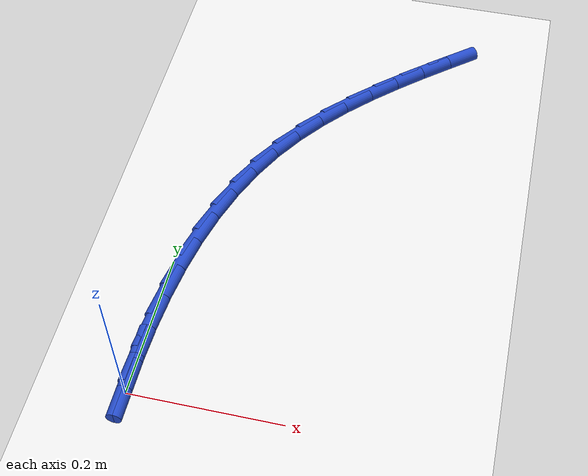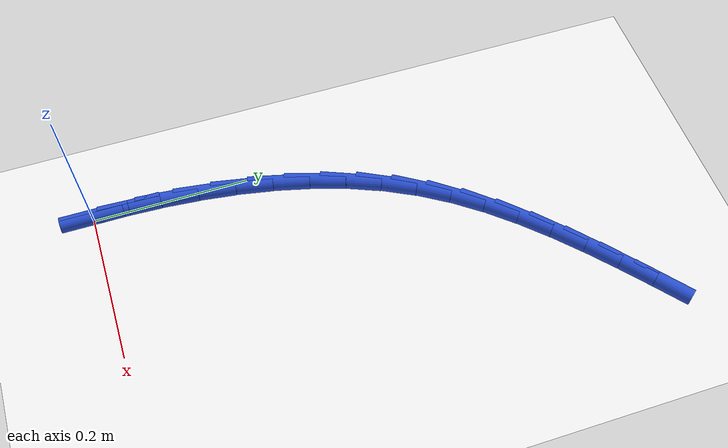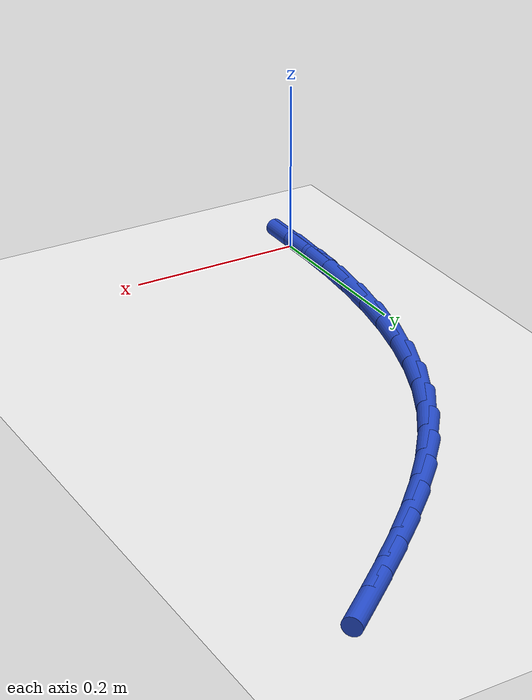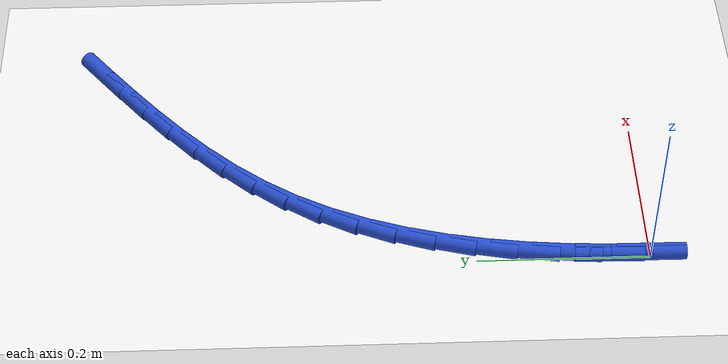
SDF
<sdf version="1.6">
 <world name="default">
  <model name="ground_plane">
   <static>1</static>
   <link name="link">
    <collision name="collision">
     <geometry><plane><normal>0 0 1</normal><size>100 100</size></plane></geometry>
     <surface><friction><ode><mu>100</mu><mu2>50</mu2></ode></friction></surface>
    </collision>
    <visual name="visual">
     <cast_shadows>0</cast_shadows>
     <geometry><plane><normal>0 0 1</normal><size>100 100</size></plane></geometry>
     <material>
      <script><uri>file://media/materials/scripts/gazebo.material</uri><name>Gazebo/WhiteGlow</name></script>
     </material>
    </visual>
   </link>
  </model>
  <model name="line">
   <link name="link_0">
    <pose>3.2959746043559335e-17 1.3877787807814457e-16 0.01 0 1.57 1.5654988172962232</pose>
    <collision name="collision">
     <geometry><cylinder><radius>0.01</radius><length>0.08</length></cylinder></geometry>
    </collision>
    <visual name="visual">
     <material>
      <script><name>Gazebo/Blue</name><uri>file://media/materials/scripts/gazebo.material</uri></script>
     </material>
     <geometry><cylinder><radius>0.01</radius><length>0.08</length></cylinder></geometry>
    </visual>
   </link>
   <link name="link_1">
    <pose>0.0002555967554684817 0.04824802381930982 0.01 0 1.57 1.5253446536705428</pose>
    <collision name="collision">
     <geometry><cylinder><radius>0.01</radius><length>0.08</length></cylinder></geometry>
    </collision>
    <visual name="visual">
     <material>
      <script><name>Gazebo/Blue</name><uri>file://media/materials/scripts/gazebo.material</uri></script>
     </material>
     <geometry><cylinder><radius>0.01</radius><length>0.08</length></cylinder></geometry>
    </visual>
   </link>
   <link name="link_2">
    <pose>0.0024501504451312165 0.09649800277802285 0.01 0 1.57 1.4808697937102777</pose>
    <collision name="collision">
     <geometry><cylinder><radius>0.01</radius><length>0.08</length></cylinder></geometry>
    </collision>
    <visual name="visual">
     <material>
      <script><name>Gazebo/Blue</name><uri>file://media/materials/scripts/gazebo.material</uri></script>
     </material>
     <geometry><cylinder><radius>0.01</radius><length>0.08</length></cylinder></geometry>
    </visual>
   </link>
   <link name="link_3">
    <pose>0.006774525556622968 0.14445617391691548 0.01 0 1.57 1.431433383375195</pose>
    <collision name="collision">
     <geometry><cylinder><radius>0.01</radius><length>0.08</length></cylinder></geometry>
    </collision>
    <visual name="visual">
     <material>
      <script><name>Gazebo/Blue</name><uri>file://media/materials/scripts/gazebo.material</uri></script>
     </material>
     <geometry><cylinder><radius>0.01</radius><length>0.08</length></cylinder></geometry>
    </visual>
   </link>
   <link name="link_4">
    <pose>0.01341958657757848 0.19182877427676417 0.01 0 1.57 1.3763400883219323</pose>
    <collision name="collision">
     <geometry><cylinder><radius>0.01</radius><length>0.08</length></cylinder></geometry>
    </collision>
    <visual name="visual">
     <material>
      <script><name>Gazebo/Blue</name><uri>file://media/materials/scripts/gazebo.material</uri></script>
     </material>
     <geometry><cylinder><radius>0.01</radius><length>0.08</length></cylinder></geometry>
    </visual>
   </link>
   <link name="link_5">
    <pose>0.022576197995632485 0.23832204089834522 0.01 0 1.57 1.3148626369471914</pose>
    <collision name="collision">
     <geometry><cylinder><radius>0.01</radius><length>0.08</length></cylinder></geometry>
    </collision>
    <visual name="visual">
     <material>
      <script><name>Gazebo/Blue</name><uri>file://media/materials/scripts/gazebo.material</uri></script>
     </material>
     <geometry><cylinder><radius>0.01</radius><length>0.08</length></cylinder></geometry>
    </visual>
   </link>
   <link name="link_6">
    <pose>0.03443522429841973 0.2836422108224351 0.01 0 1.57 1.2462872489550638</pose>
    <collision name="collision">
     <geometry><cylinder><radius>0.01</radius><length>0.08</length></cylinder></geometry>
    </collision>
    <visual name="visual">
     <material>
      <script><name>Gazebo/Blue</name><uri>file://media/materials/scripts/gazebo.material</uri></script>
     </material>
     <geometry><cylinder><radius>0.01</radius><length>0.08</length></cylinder></geometry>
    </visual>
   </link>
   <link name="link_7">
    <pose>0.04918752997357492 0.32749552108980995 0.01 0 1.57 1.1699914999448833</pose>
    <collision name="collision">
     <geometry><cylinder><radius>0.01</radius><length>0.08</length></cylinder></geometry>
    </collision>
    <visual name="visual">
     <material>
      <script><name>Gazebo/Blue</name><uri>file://media/materials/scripts/gazebo.material</uri></script>
     </material>
     <geometry><cylinder><radius>0.01</radius><length>0.08</length></cylinder></geometry>
    </visual>
   </link>
   <link name="link_8">
    <pose>0.06702397950873284 0.3695882087412463 0.01 0 1.57 1.08556363328093</pose>
    <collision name="collision">
     <geometry><cylinder><radius>0.01</radius><length>0.08</length></cylinder></geometry>
    </collision>
    <visual name="visual">
     <material>
      <script><name>Gazebo/Blue</name><uri>file://media/materials/scripts/gazebo.material</uri></script>
     </material>
     <geometry><cylinder><radius>0.01</radius><length>0.08</length></cylinder></geometry>
    </visual>
   </link>
   <link name="link_9">
    <pose>0.08813539696439802 0.40962655066055487 0.01 0 1.57 0.9967152413968317</pose>
    <collision name="collision">
     <geometry><cylinder><radius>0.01</radius><length>0.08</length></cylinder></geometry>
    </collision>
    <visual name="visual">
     <material>
      <script><name>Gazebo/Blue</name><uri>file://media/materials/scripts/gazebo.material</uri></script>
     </material>
     <geometry><cylinder><radius>0.01</radius><length>0.08</length></cylinder></geometry>
    </visual>
   </link>
   <link name="link_10">
    <pose>0.11258963824109372 0.4474380152336753 0.01 0 1.57 0.9163013546582254</pose>
    <collision name="collision">
     <geometry><cylinder><radius>0.01</radius><length>0.08</length></cylinder></geometry>
    </collision>
    <visual name="visual">
     <material>
      <script><name>Gazebo/Blue</name><uri>file://media/materials/scripts/gazebo.material</uri></script>
     </material>
     <geometry><cylinder><radius>0.01</radius><length>0.08</length></cylinder></geometry>
    </visual>
   </link>
   <link name="link_11">
    <pose>0.14006025451220633 0.48323867861448977 0.01 0 1.57 0.8476876050398723</pose>
    <collision name="collision">
     <geometry><cylinder><radius>0.01</radius><length>0.08</length></cylinder></geometry>
    </collision>
    <visual name="visual">
     <material>
      <script><name>Gazebo/Blue</name><uri>file://media/materials/scripts/gazebo.material</uri></script>
     </material>
     <geometry><cylinder><radius>0.01</radius><length>0.08</length></cylinder></geometry>
    </visual>
   </link>
   <link name="link_12">
    <pose>0.17014192487456226 0.5173223494807773 0.01 0 1.57 0.7911424511987577</pose>
    <collision name="collision">
     <geometry><cylinder><radius>0.01</radius><length>0.08</length></cylinder></geometry>
    </collision>
    <visual name="visual">
     <material>
      <script><name>Gazebo/Blue</name><uri>file://media/materials/scripts/gazebo.material</uri></script>
     </material>
     <geometry><cylinder><radius>0.01</radius><length>0.08</length></cylinder></geometry>
    </visual>
   </link>
   <link name="link_13">
    <pose>0.20242932842498798 0.5499828365103169 0.01 0 1.57 0.7464549583323634</pose>
    <collision name="collision">
     <geometry><cylinder><radius>0.01</radius><length>0.08</length></cylinder></geometry>
    </collision>
    <visual name="visual">
     <material>
      <script><name>Gazebo/Blue</name><uri>file://media/materials/scripts/gazebo.material</uri></script>
     </material>
     <geometry><cylinder><radius>0.01</radius><length>0.08</length></cylinder></geometry>
    </visual>
   </link>
   <link name="link_14">
    <pose>0.23651714426030995 0.5815139483808873 0.01 0 1.57 0.7131837666676182</pose>
    <collision name="collision">
     <geometry><cylinder><radius>0.01</radius><length>0.08</length></cylinder></geometry>
    </collision>
    <visual name="visual">
     <material>
      <script><name>Gazebo/Blue</name><uri>file://media/materials/scripts/gazebo.material</uri></script>
     </material>
     <geometry><cylinder><radius>0.01</radius><length>0.08</length></cylinder></geometry>
    </visual>
   </link>
   <link name="link_15">
    <pose>0.2720000514773548 0.6122094937702682 0.01 0 1.57 0.6908404510857581</pose>
    <collision name="collision">
     <geometry><cylinder><radius>0.01</radius><length>0.08</length></cylinder></geometry>
    </collision>
    <visual name="visual">
     <material>
      <script><name>Gazebo/Blue</name><uri>file://media/materials/scripts/gazebo.material</uri></script>
     </material>
     <geometry><cylinder><radius>0.01</radius><length>0.08</length></cylinder></geometry>
    </visual>
   </link>
   <link name="link_16">
    <pose>0.3084727291729488 0.6423632813562383 0.01 0 1.57 0.6790067243754607</pose>
    <collision name="collision">
     <geometry><cylinder><radius>0.01</radius><length>0.08</length></cylinder></geometry>
    </collision>
    <visual name="visual">
     <material>
      <script><name>Gazebo/Blue</name><uri>file://media/materials/scripts/gazebo.material</uri></script>
     </material>
     <geometry><cylinder><radius>0.01</radius><length>0.08</length></cylinder></geometry>
    </visual>
   </link>
   <link name="link_150">
    <pose>1.5612511283791264e-17 2.636779683484747e-16 0.01 0 1.57 1.5664820666401391</pose>
    <collision name="collision">
     <geometry><cylinder><radius>0.01</radius><length>0.08</length></cylinder></geometry>
    </collision>
    <visual name="visual">
     <material>
      <script><name>Gazebo/Blue</name><uri>file://media/materials/scripts/gazebo.material</uri></script>
     </material>
     <geometry><cylinder><radius>0.01</radius><length>0.08</length></cylinder></geometry>
    </visual>
   </link>
   <link name="link_151">
    <pose>0.00020829875194839156 0.04828115415646596 0.01 0 1.57 1.5664820666401396</pose>
    <collision name="collision">
     <geometry><cylinder><radius>0.01</radius><length>0.08</length></cylinder></geometry>
    </collision>
    <visual name="visual">
     <material>
      <script><name>Gazebo/Blue</name><uri>file://media/materials/scripts/gazebo.material</uri></script>
     </material>
     <geometry><cylinder><radius>0.01</radius><length>0.08</length></cylinder></geometry>
    </visual>
   </link>
  </model>
 </world>
</sdf>
